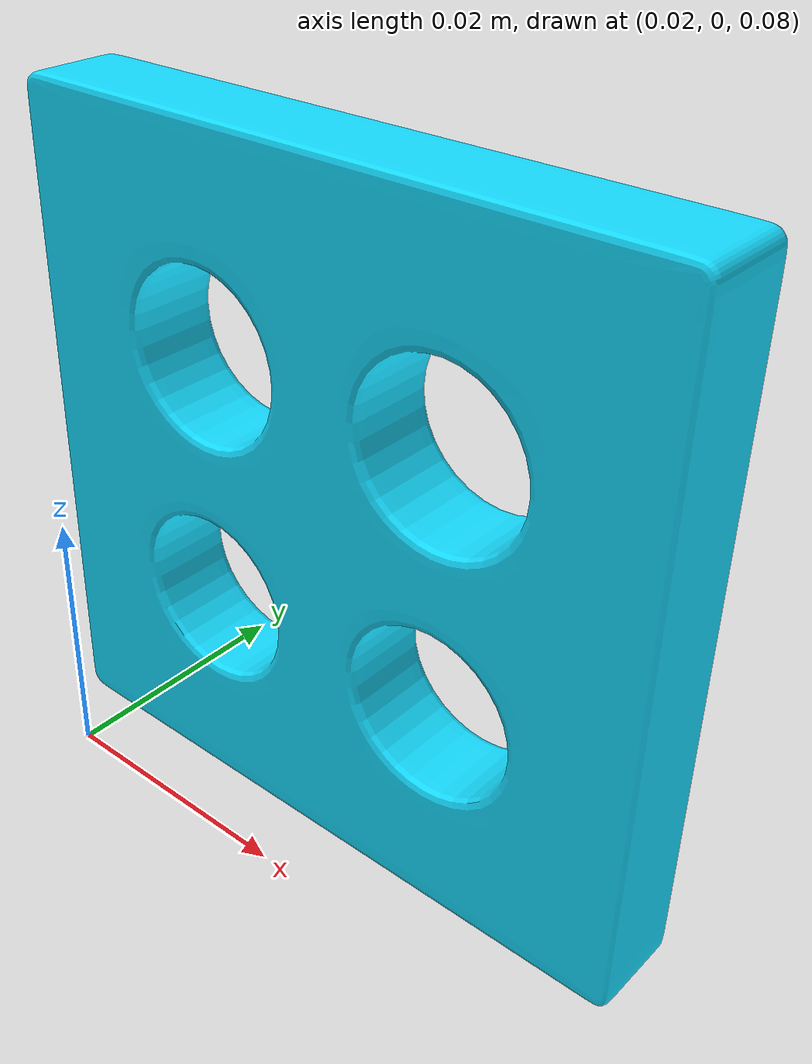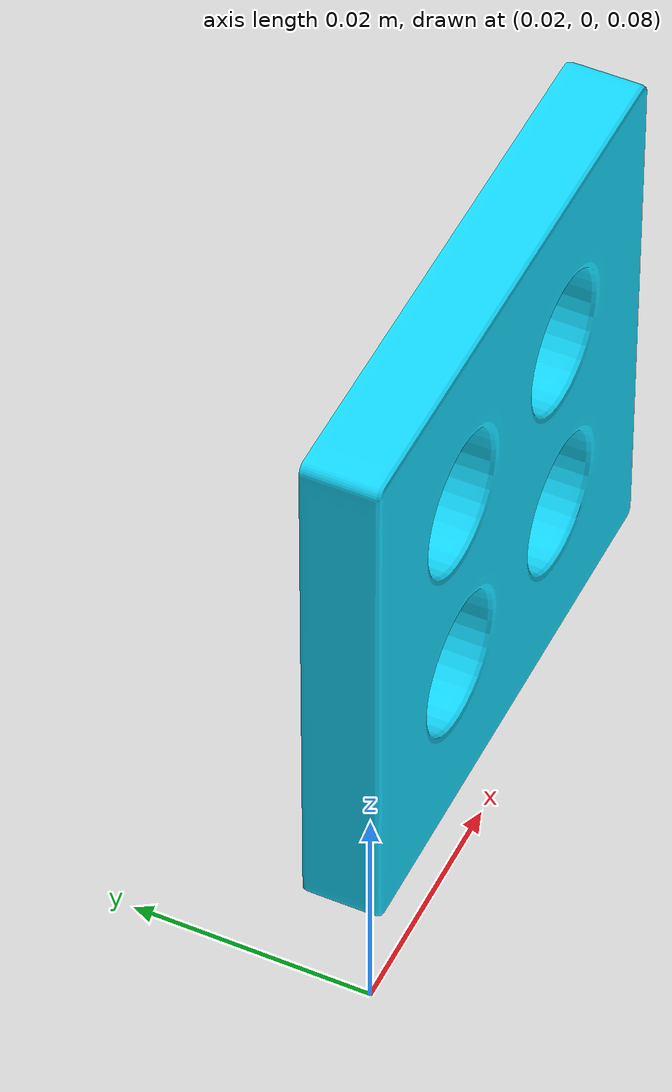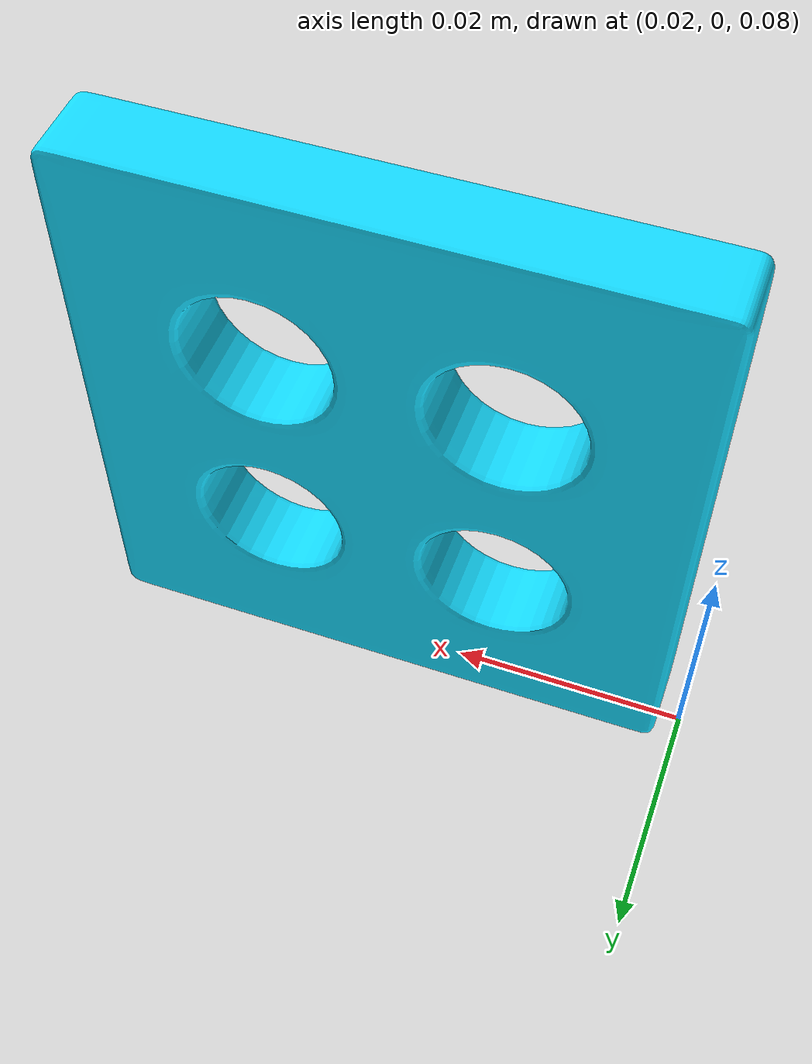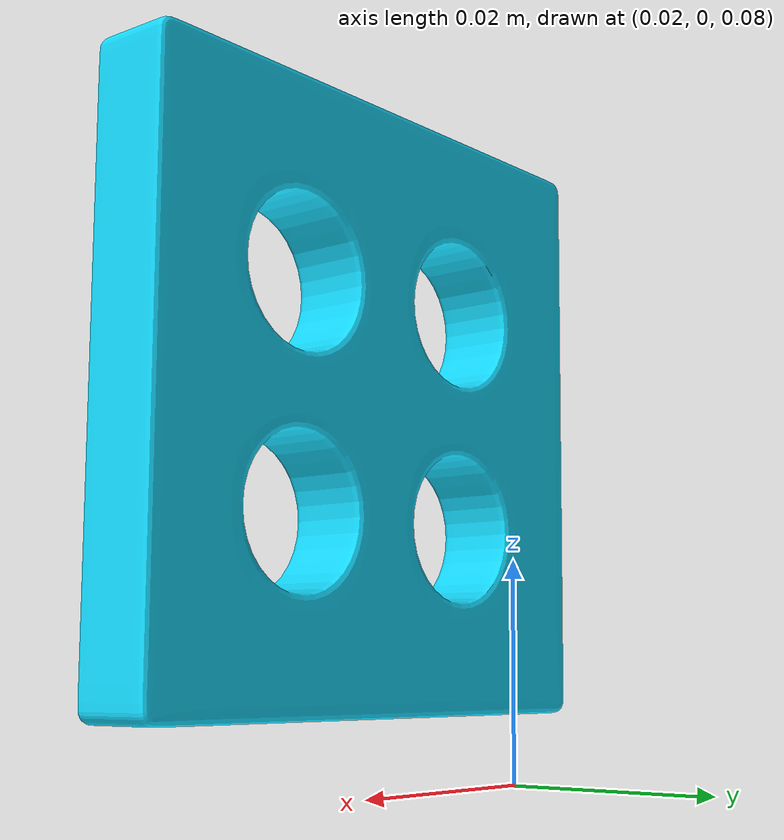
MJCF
<mujoco model="cube">
  <compiler angle="radian" meshdir="assets" texturedir="assets" autolimits="true"/>
  <default>
    <default class="visual">
      <geom group="2" type="mesh" contype="0" conaffinity="0"/>
    </default>
    <default class="collision">
      <geom group="3" type="mesh" mass="0" friction="0 0 0" solimp="0.95 0.99 0.001" solref="0.004 1"/>
    </default>
    <default class="target_area">
      <geom group="3" type="mesh" contype="0" conaffinity="0" friction="0 0 0" solimp="0.99 0.99 0.000001" solref="0.000001 1"/>
    </default>
  </default>
  <asset>
    <material name="Color_Blue" specular="0.5" shininess="0.25" rgba="0.080062 0.861035 1.000000 1.000000"/>
    <mesh file="cube.obj" scale="1 1 1"/>
    <mesh file="cube_collision_0.obj" scale="1 1 1"/>
    <mesh file="cube_collision_1.obj" scale="1 1 1"/>
    <mesh file="cube_collision_2.obj" scale="1 1 1"/>
    <mesh file="cube_collision_3.obj" scale="1 1 1"/>
    <mesh file="cube_collision_4.obj" scale="1 1 1"/>
    <mesh file="cube_collision_5.obj" scale="1 1 1"/>
    <mesh file="cube_collision_6.obj" scale="1 1 1"/>
    <mesh file="cube_collision_7.obj" scale="1 1 1"/>
    <mesh file="cube_collision_8.obj" scale="1 1 1"/>
    <mesh file="cube_collision_9.obj" scale="1 1 1"/>
    <mesh file="cube_collision_10.obj" scale="1 1 1"/>
    <mesh file="cube_collision_11.obj" scale="1 1 1"/>
    <mesh file="cube_collision_12.obj" scale="1 1 1"/>
    <mesh file="cube_collision_13.obj" scale="1 1 1"/>
    <mesh file="cube_collision_14.obj" scale="1 1 1"/>
    <mesh file="cube_collision_15.obj" scale="1 1 1"/>
    <mesh file="cube_collision_16.obj" scale="1 1 1"/>
    <mesh file="cube_collision_17.obj" scale="1 1 1"/>
    <mesh file="cube_collision_18.obj" scale="1 1 1"/>
    <mesh file="cube_collision_19.obj" scale="1 1 1"/>
    <mesh file="cube_collision_20.obj" scale="1 1 1"/>
    <mesh file="cube_collision_21.obj" scale="1 1 1"/>
    <mesh file="cube_collision_22.obj" scale="1 1 1"/>
    <mesh file="cube_collision_23.obj" scale="1 1 1"/>
    <mesh file="cube_collision_24.obj" scale="1 1 1"/>
    <mesh file="cube_collision_25.obj" scale="1 1 1"/>
  </asset>
  <worldbody>
    <body name="cube">
      <geom material="Color_Blue" mesh="cube" class="visual"/>

      <body name="hole_site">
      <geom name="hole_site_1" type="cylinder" size=".006 .002 .04" pos=".036 0.004 0.119" euler="1.5708 0 0" rgba="1 1 0 0" class="target_area" contype="0"  conaffinity="0"/>
      <geom name="hole_site_2" type="cylinder" size=".006 .002 .04" pos=".036 0.004 0.101" euler="1.5708 0 0" rgba="1 1 0 0" class="target_area" contype="0"  conaffinity="0"/>
      <geom name="hole_site_3" type="cylinder" size=".006 .002 .04" pos=".055 0.004 0.119" euler="1.5708 0 0" rgba="1 1 0 0" class="target_area" contype="0"  conaffinity="0"/>
      <geom name="hole_site_4" type="cylinder" size=".006 .002 .04" pos=".055 0.004 0.101" euler="1.5708 0 0" rgba="1 1 0 0" class="target_area" contype="0"  conaffinity="0"/>
      </body>

      <geom mesh="cube_collision_0" rgba="0.3214623714195616 0.9946245632505808 0.9896818258162443 1" class="collision"/>
      <geom mesh="cube_collision_1" rgba="0.33049723360545835 0.7384340050458591 0.4183279368527515 1" class="collision"/>
      <geom mesh="cube_collision_2" rgba="0.05112403681751687 0.30285171004163425 0.21094186634253798 1" class="collision"/>
      <geom mesh="cube_collision_3" rgba="0.1743904212773253 0.9224491634952096 0.4764711390447316 1" class="collision"/>
      <geom mesh="cube_collision_4" rgba="0.7591706784887954 0.005838911425968485 0.8801952530923662 1" class="collision"/>
      <geom mesh="cube_collision_5" rgba="0.16058942047812852 0.9547553440255697 0.8018166603680216 1" class="collision"/>
      <geom mesh="cube_collision_6" rgba="0.1443190580292527 0.19761234687404783 0.26666724987515833 1" class="collision"/>
      <geom mesh="cube_collision_7" rgba="0.1677406940374706 0.19411000825364966 0.03739232527571312 1" class="collision"/>
      <geom mesh="cube_collision_8" rgba="0.0927602403275376 0.313925072215966 0.5359162992722408 1" class="collision"/>
      <geom mesh="cube_collision_9" rgba="0.43911253060222843 0.624691930846515 0.7034495096676354 1" class="collision"/>
      <geom mesh="cube_collision_10" rgba="0.16282400335644198 0.7673654070205942 0.5788629918836188 1" class="collision"/>
      <geom mesh="cube_collision_11" rgba="0.7156339560823225 0.7677380923151216 0.8169138391608359 1" class="collision"/>
      <geom mesh="cube_collision_12" rgba="0.5804975685745369 0.258077464364852 0.32745059075895633 1" class="collision"/>
      <geom mesh="cube_collision_13" rgba="0.1592854808163061 0.4218706214546809 0.3624576517748276 1" class="collision"/>
      <geom mesh="cube_collision_14" rgba="0.1521913086879062 0.7756901842721208 0.661870927059641 1" class="collision"/>
      <geom mesh="cube_collision_15" rgba="0.6189033876347145 0.615662375776082 0.7468352251575366 1" class="collision"/>
      <geom mesh="cube_collision_16" rgba="0.6017702878002514 0.09763317803657712 0.5109910429221722 1" class="collision"/>
      <geom mesh="cube_collision_17" rgba="0.32026802857230896 0.5916128856113753 0.7369088818912329 1" class="collision"/>
      <geom mesh="cube_collision_18" rgba="0.08335701361296333 0.022479700137715386 0.2415218628914353 1" class="collision"/>
      <geom mesh="cube_collision_19" rgba="0.060198172605472 0.6232514264089721 0.7446004006389083 1" class="collision"/>
      <geom mesh="cube_collision_20" rgba="0.5067355416870933 0.9640333346368682 0.48703208029594114 1" class="collision"/>
      <geom mesh="cube_collision_21" rgba="0.27344280003269894 0.5738507261061022 0.013367325454638368 1" class="collision"/>
      <geom mesh="cube_collision_22" rgba="0.47986091334516423 0.7604045502723165 0.5002919728050165 1" class="collision"/>
      <geom mesh="cube_collision_23" rgba="0.23676131003838552 0.14964448902075755 0.880293928346104 1" class="collision"/>
      <geom mesh="cube_collision_24" rgba="0.4432761551105875 0.7383496290535126 0.17481644687719589 1" class="collision"/>
      <geom mesh="cube_collision_25" rgba="0.06889893453952445 0.5155107828581071 0.439637253694652 1" class="collision"/>
    </body>
  </worldbody>
</mujoco>
